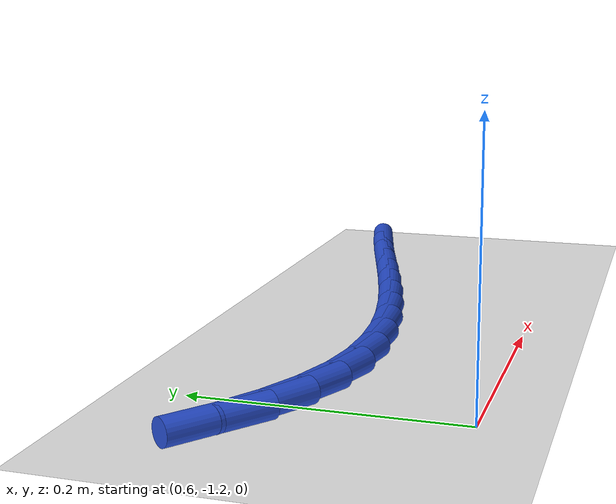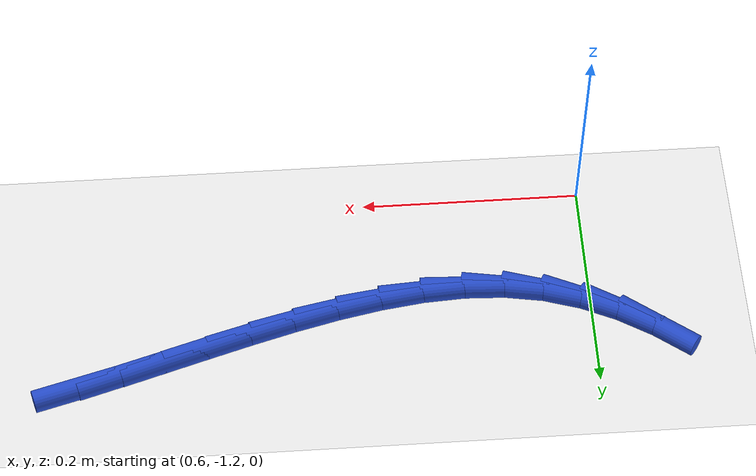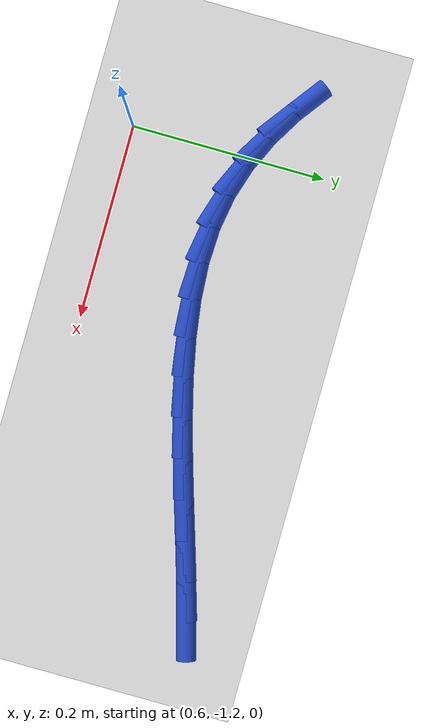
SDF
<sdf version="1.6">
 <world name="default">
  <model name="ground_plane">
   <static>1</static>
   <link name="link">
    <collision name="collision">
     <geometry><plane><normal>0 0 1</normal><size>100 100</size></plane></geometry>
     <surface><friction><ode><mu>100</mu><mu2>50</mu2></ode></friction></surface>
    </collision>
    <visual name="visual">
     <cast_shadows>0</cast_shadows>
     <geometry><plane><normal>0 0 1</normal><size>100 100</size></plane></geometry>
     <material>
      <script><uri>file://media/materials/scripts/gazebo.material</uri><name>Gazebo/WhiteGlow</name></script>
     </material>
    </visual>
   </link>
  </model>
  <model name="line">
   <link name="link_136">
    <pose>1.0653562458987744 -1.014212059824119 0.01 0 1.57 0.2736631785294783</pose>
    <collision name="collision">
     <geometry><cylinder><radius>0.01</radius><length>0.08</length></cylinder></geometry>
    </collision>
    <visual name="visual">
     <material>
      <script><name>Gazebo/Blue</name><uri>file://media/materials/scripts/gazebo.material</uri></script>
     </material>
     <geometry><cylinder><radius>0.01</radius><length>0.08</length></cylinder></geometry>
    </visual>
   </link>
   <link name="link_137">
    <pose>1.0273957622067846 -1.0248677921623135 0.01 0 1.57 0.2961527742731713</pose>
    <collision name="collision">
     <geometry><cylinder><radius>0.01</radius><length>0.08</length></cylinder></geometry>
    </collision>
    <visual name="visual">
     <material>
      <script><name>Gazebo/Blue</name><uri>file://media/materials/scripts/gazebo.material</uri></script>
     </material>
     <geometry><cylinder><radius>0.01</radius><length>0.08</length></cylinder></geometry>
    </visual>
   </link>
   <link name="link_138">
    <pose>0.9890314078030593 -1.036573749443767 0.01 0 1.57 0.3034883964170799</pose>
    <collision name="collision">
     <geometry><cylinder><radius>0.01</radius><length>0.08</length></cylinder></geometry>
    </collision>
    <visual name="visual">
     <material>
      <script><name>Gazebo/Blue</name><uri>file://media/materials/scripts/gazebo.material</uri></script>
     </material>
     <geometry><cylinder><radius>0.01</radius><length>0.08</length></cylinder></geometry>
    </visual>
   </link>
   <link name="link_139">
    <pose>0.9500015037348695 -1.0487964553428524 0.01 0 1.57 0.2977170713036685</pose>
    <collision name="collision">
     <geometry><cylinder><radius>0.01</radius><length>0.08</length></cylinder></geometry>
    </collision>
    <visual name="visual">
     <material>
      <script><name>Gazebo/Blue</name><uri>file://media/materials/scripts/gazebo.material</uri></script>
     </material>
     <geometry><cylinder><radius>0.01</radius><length>0.08</length></cylinder></geometry>
    </visual>
   </link>
   <link name="link_140">
    <pose>0.9104322737735685 -1.0609377445480193 0.01 0 1.57 0.2796122160409916</pose>
    <collision name="collision">
     <geometry><cylinder><radius>0.01</radius><length>0.08</length></cylinder></geometry>
    </collision>
    <visual name="visual">
     <material>
      <script><name>Gazebo/Blue</name><uri>file://media/materials/scripts/gazebo.material</uri></script>
     </material>
     <geometry><cylinder><radius>0.01</radius><length>0.08</length></cylinder></geometry>
    </visual>
   </link>
   <link name="link_141">
    <pose>0.8706044727802235 -1.0723736812159146 0.01 0 1.57 0.24864673907922252</pose>
    <collision name="collision">
     <geometry><cylinder><radius>0.01</radius><length>0.08</length></cylinder></geometry>
    </collision>
    <visual name="visual">
     <material>
      <script><name>Gazebo/Blue</name><uri>file://media/materials/scripts/gazebo.material</uri></script>
     </material>
     <geometry><cylinder><radius>0.01</radius><length>0.08</length></cylinder></geometry>
    </visual>
   </link>
   <link name="link_142">
    <pose>0.8307992543947347 -1.0824802630004335 0.01 0 1.57 0.20354464470857098</pose>
    <collision name="collision">
     <geometry><cylinder><radius>0.01</radius><length>0.08</length></cylinder></geometry>
    </collision>
    <visual name="visual">
     <material>
      <script><name>Gazebo/Blue</name><uri>file://media/materials/scripts/gazebo.material</uri></script>
     </material>
     <geometry><cylinder><radius>0.01</radius><length>0.08</length></cylinder></geometry>
    </visual>
   </link>
   <link name="link_143">
    <pose>0.7912977722570049 -1.090633487555471 0.01 0 1.57 0.1423088024069766</pose>
    <collision name="collision">
     <geometry><cylinder><radius>0.01</radius><length>0.08</length></cylinder></geometry>
    </collision>
    <visual name="visual">
     <material>
      <script><name>Gazebo/Blue</name><uri>file://media/materials/scripts/gazebo.material</uri></script>
     </material>
     <geometry><cylinder><radius>0.01</radius><length>0.08</length></cylinder></geometry>
    </visual>
   </link>
   <link name="link_144">
    <pose>0.7523811800069351 -1.096209352534922 0.01 0 1.57 0.062323094357419</pose>
    <collision name="collision">
     <geometry><cylinder><radius>0.01</radius><length>0.08</length></cylinder></geometry>
    </collision>
    <visual name="visual">
     <material>
      <script><name>Gazebo/Blue</name><uri>file://media/materials/scripts/gazebo.material</uri></script>
     </material>
     <geometry><cylinder><radius>0.01</radius><length>0.08</length></cylinder></geometry>
    </visual>
   </link>
   <link name="link_145">
    <pose>0.7143306312844262 -1.0985838555926826 0.01 0 1.57 -0.03929492358082332</pose>
    <collision name="collision">
     <geometry><cylinder><radius>0.01</radius><length>0.08</length></cylinder></geometry>
    </collision>
    <visual name="visual">
     <material>
      <script><name>Gazebo/Blue</name><uri>file://media/materials/scripts/gazebo.material</uri></script>
     </material>
     <geometry><cylinder><radius>0.01</radius><length>0.08</length></cylinder></geometry>
    </visual>
   </link>
   <link name="link_146">
    <pose>0.6774272797293802 -1.0971329943826476 0.01 0 1.57 -0.16447845018879753</pose>
    <collision name="collision">
     <geometry><cylinder><radius>0.01</radius><length>0.08</length></cylinder></geometry>
    </collision>
    <visual name="visual">
     <material>
      <script><name>Gazebo/Blue</name><uri>file://media/materials/scripts/gazebo.material</uri></script>
     </material>
     <geometry><cylinder><radius>0.01</radius><length>0.08</length></cylinder></geometry>
    </visual>
   </link>
   <link name="link_147">
    <pose>0.6419479409235531 -1.0912442082749536 0.01 0 1.57 -0.30053978224726785</pose>
    <collision name="collision">
     <geometry><cylinder><radius>0.01</radius><length>0.08</length></cylinder></geometry>
    </collision>
    <visual name="visual">
     <material>
      <script><name>Gazebo/Blue</name><uri>file://media/materials/scripts/gazebo.material</uri></script>
     </material>
     <geometry><cylinder><radius>0.01</radius><length>0.08</length></cylinder></geometry>
    </visual>
   </link>
   <link name="link_148">
    <pose>0.6080098439852331 -1.0807258491702179 0.01 0 1.57 -0.42769236119208326</pose>
    <collision name="collision">
     <geometry><cylinder><radius>0.01</radius><length>0.08</length></cylinder></geometry>
    </collision>
    <visual name="visual">
     <material>
      <script><name>Gazebo/Blue</name><uri>file://media/materials/scripts/gazebo.material</uri></script>
     </material>
     <geometry><cylinder><radius>0.01</radius><length>0.08</length></cylinder></geometry>
    </visual>
   </link>
   <link name="link_149">
    <pose>0.5755280013135318 -1.0659196196626248 0.01 0 1.57 -0.5414564154066275</pose>
    <collision name="collision">
     <geometry><cylinder><radius>0.01</radius><length>0.08</length></cylinder></geometry>
    </collision>
    <visual name="visual">
     <material>
      <script><name>Gazebo/Blue</name><uri>file://media/materials/scripts/gazebo.material</uri></script>
     </material>
     <geometry><cylinder><radius>0.01</radius><length>0.08</length></cylinder></geometry>
    </visual>
   </link>
   <link name="link_150">
    <pose>0.5444044111051961 -1.0472015475687453 0.01 0 1.57 -0.6404161300863691</pose>
    <collision name="collision">
     <geometry><cylinder><radius>0.01</radius><length>0.08</length></cylinder></geometry>
    </collision>
    <visual name="visual">
     <material>
      <script><name>Gazebo/Blue</name><uri>file://media/materials/scripts/gazebo.material</uri></script>
     </material>
     <geometry><cylinder><radius>0.01</radius><length>0.08</length></cylinder></geometry>
    </visual>
   </link>
  </model>
 </world>
</sdf>
